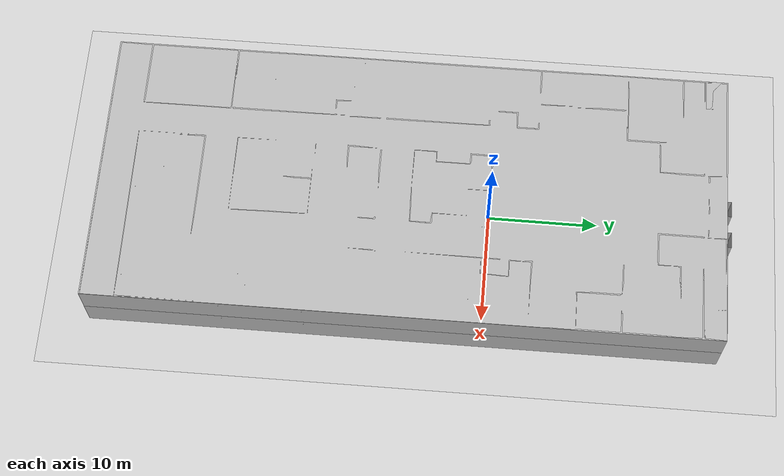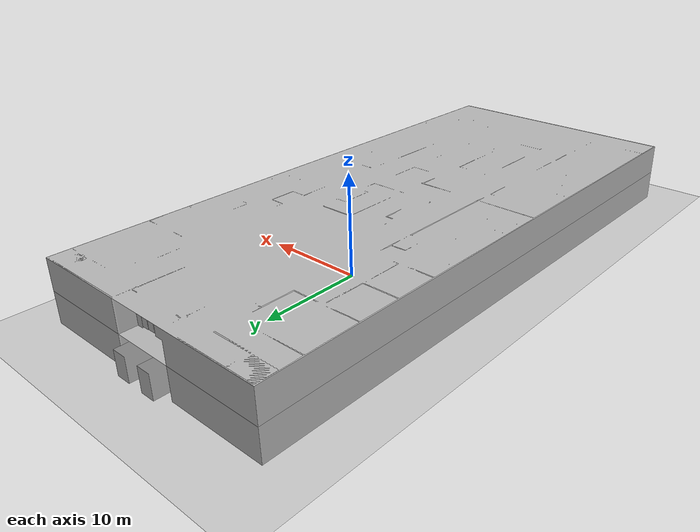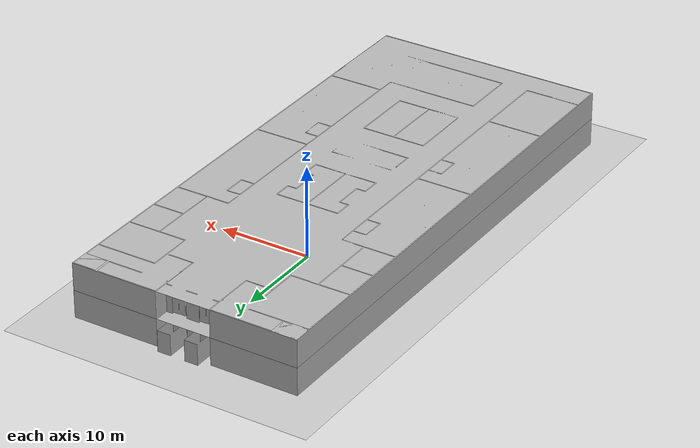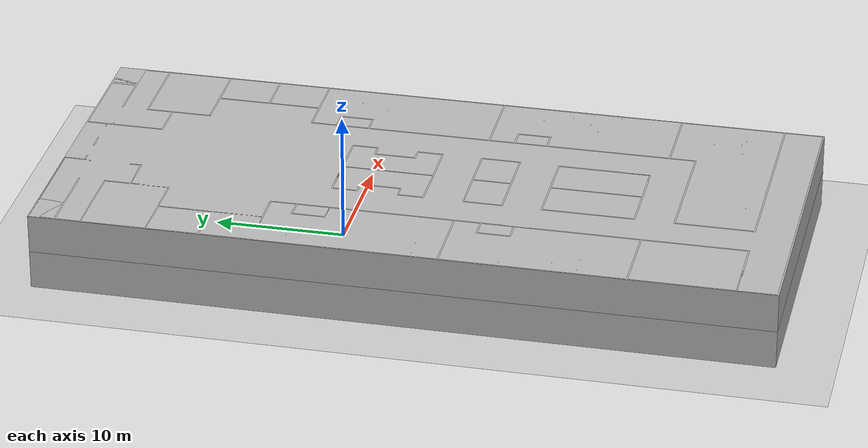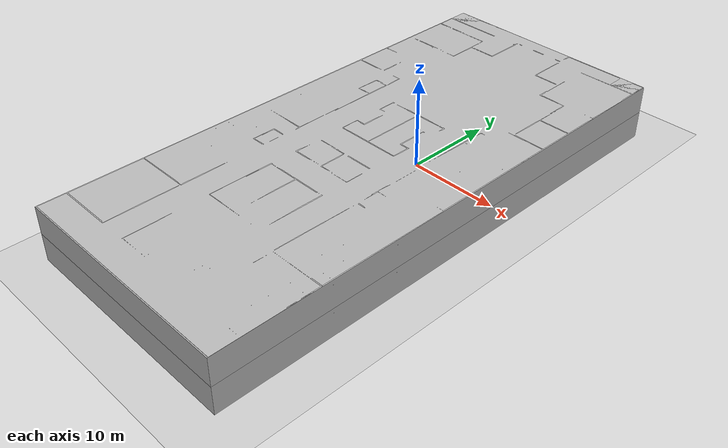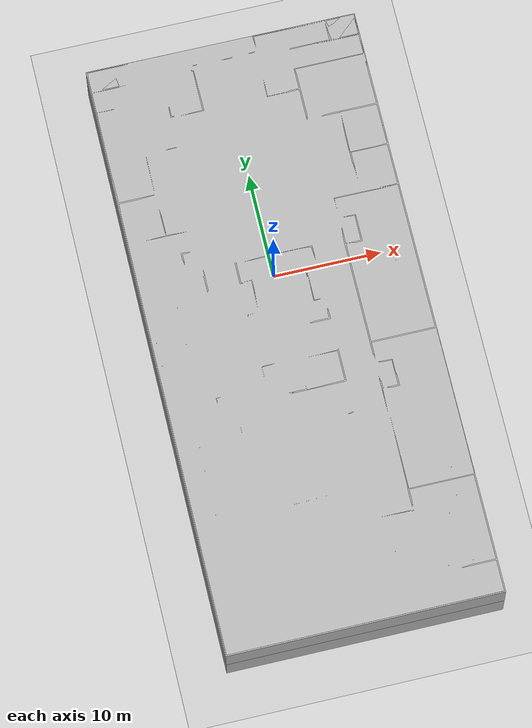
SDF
<sdf version="1.6">
 <world name="world">
  <gravity>0 0 -9.8</gravity>
  <physics default="0" name="default_physics" type="ode">
   <max_step_size>0.001</max_step_size>
   <real_time_factor>1</real_time_factor>
   <real_time_update_rate>1000</real_time_update_rate>
  </physics>
  <scene><ambient>0.6 0.6 0.6 1</ambient><background>0.4 0.4 0.4 1</background><shadows>false</shadows></scene>
  <include><uri>model://sun</uri></include>
  <include><uri>model://ground_plane</uri><pose>0 0 -0.1 0 -0 0</pose></include>
  <model name="aws_robomaker_hospital_floor_01_walls_1">
   <include>
    <uri>model://aws_robomaker_hospital_floor_01_walls</uri>
    <static>true</static>
    <pose>-0.013823 -0.013783 0 0 -0 0</pose>
   </include>
  </model>
  <model name="aws_robomaker_hospital_elevator_01_portal_1">
   <include>
    <uri>model://aws_robomaker_hospital_elevator_01_portal</uri>
    <static>true</static>
    <pose>-1.50654 19.4813 0.19 0 -0 0</pose>
   </include>
  </model>
  <model name="aws_robomaker_hospital_elevator_01_portal_2">
   <include>
    <uri>model://aws_robomaker_hospital_elevator_01_portal</uri>
    <static>true</static>
    <pose>1.51134 19.487 0.19 0 -0 0</pose>
   </include>
  </model>
  <model name="aws_robomaker_hospital_elevator_01_car_1">
   <include>
    <uri>model://aws_robomaker_hospital_elevator_01_car</uri>
    <static>true</static>
    <pose>-1.49587 19.35 0.19 0 -0 0</pose>
   </include>
  </model>
  <model name="aws_robomaker_hospital_elevator_01_car_2">
   <include>
    <uri>model://aws_robomaker_hospital_elevator_01_car</uri>
    <static>true</static>
    <pose>1.5407 19.35 0.19 0 -0 0</pose>
   </include>
  </model>
  <model name="aws_robomaker_hospital_elevator_01_door_1">
   <include>
    <uri>model://aws_robomaker_hospital_elevator_01_door</uri>
    <static>true</static>
    <pose>-1.51 19.35 0.19 0 -0 0</pose>
   </include>
  </model>
  <model name="aws_robomaker_hospital_elevator_01_door_2">
   <include>
    <uri>model://aws_robomaker_hospital_elevator_01_door</uri>
    <static>true</static>
    <pose>1.52843 19.3627 0.19 0 -0 0</pose>
   </include>
  </model>
  <model name="aws_robomaker_hospital_curtain_half_open_01_1">
   <include>
    <uri>model://aws_robomaker_hospital_curtain_half_open_01</uri>
    <static>true</static>
    <pose>-11.0216 -13.8069 0 0 -0 1.55358</pose>
   </include>
  </model>
  <model name="aws_robomaker_hospital_curtain_closed_01_1">
   <include>
    <uri>model://aws_robomaker_hospital_curtain_closed_01</uri>
    <static>true</static>
    <pose>-11.022 -7.27757 0 0 -0 1.57907</pose>
   </include>
  </model>
  <model name="aws_robomaker_hospital_curtain_half_open_01_2">
   <include>
    <uri>model://aws_robomaker_hospital_curtain_half_open_01</uri>
    <static>true</static>
    <pose>11.1417 -21.4039 0 0 0 -1.55117</pose>
   </include>
  </model>
  <model name="aws_robomaker_hospital_curtain_half_open_01_3">
   <include>
    <uri>model://aws_robomaker_hospital_curtain_half_open_01</uri>
    <static>true</static>
    <pose>11.1068 -17.8472 0 0 0 -1.55117</pose>
   </include>
  </model>
  <model name="aws_robomaker_hospital_curtain_half_open_01_4">
   <include>
    <uri>model://aws_robomaker_hospital_curtain_half_open_01</uri>
    <static>true</static>
    <pose>11.1374 -14.1551 0 0 0 -1.55117</pose>
   </include>
  </model>
  <model name="aws_robomaker_hospital_curtain_half_open_01_5">
   <include>
    <uri>model://aws_robomaker_hospital_curtain_half_open_01</uri>
    <static>true</static>
    <pose>-11.0332 -17.61 0 0 -0 1.55358</pose>
   </include>
  </model>
  <model name="aws_robomaker_hospital_curtain_half_open_01_6">
   <include>
    <uri>model://aws_robomaker_hospital_curtain_half_open_01</uri>
    <static>true</static>
    <pose>-11.0086 -21.7566 0 0 -0 1.55358</pose>
   </include>
  </model>
  <model name="aws_robomaker_hospital_curtain_half_open_01_7">
   <include>
    <uri>model://aws_robomaker_hospital_curtain_half_open_01</uri>
    <static>true</static>
    <pose>-11.0426 0.066126 0 0 -0 1.56614</pose>
   </include>
  </model>
  <model name="aws_robomaker_hospital_curtain_half_open_01_8">
   <include>
    <uri>model://aws_robomaker_hospital_curtain_half_open_01</uri>
    <static>true</static>
    <pose>-11.0309 -3.75145 0 0 -0 1.56614</pose>
   </include>
  </model>
  <model name="aws_robomaker_hospital_floor_01_ceiling_1">
   <include>
    <uri>model://aws_robomaker_hospital_floor_01_ceiling</uri>
    <static>true</static>
    <pose>0.016552 0.050728 0 0 -0 0</pose>
   </include>
  </model>
  <model name="aws_robomaker_hospital_ramp_01_1">
   <include>
    <uri>model://aws_robomaker_hospital_ramp_01</uri>
    <static>true</static>
    <pose>-1.70996 16.3685 0 0 -0 0</pose>
   </include>
  </model>
  <model name="aws_robomaker_hospital_curtain_closed_01_2">
   <include>
    <uri>model://aws_robomaker_hospital_curtain_closed_01</uri>
    <static>true</static>
    <pose>11.0303 -3.70124 0 0 0 -1.58306</pose>
   </include>
  </model>
  <model name="aws_robomaker_hospital_curtain_closed_01_3">
   <include>
    <uri>model://aws_robomaker_hospital_curtain_closed_01</uri>
    <static>true</static>
    <pose>10.9586 0.159483 0 0 0 -1.58306</pose>
   </include>
  </model>
  <model name="aws_robomaker_hospital_curtain_closed_01_4">
   <include>
    <uri>model://aws_robomaker_hospital_curtain_closed_01</uri>
    <static>true</static>
    <pose>10.9819 -26.2149 0 0 0 -1.58306</pose>
   </include>
  </model>
  <model name="aws_robomaker_hospital_curtain_closed_01_5">
   <include>
    <uri>model://aws_robomaker_hospital_curtain_closed_01</uri>
    <static>true</static>
    <pose>1.31506 -30.5771 0 0 -0 3.1401</pose>
   </include>
  </model>
  <model name="aws_robomaker_hospital_curtain_closed_01_6">
   <include>
    <uri>model://aws_robomaker_hospital_curtain_closed_01</uri>
    <static>true</static>
    <pose>5.49659 -30.5364 0 0 -0 3.1401</pose>
   </include>
  </model>
  <model name="aws_robomaker_hospital_curtain_closed_01_7">
   <include>
    <uri>model://aws_robomaker_hospital_curtain_closed_01</uri>
    <static>true</static>
    <pose>9.80048 -30.5918 0 0 -0 3.1401</pose>
   </include>
  </model>
  <model name="floor_1_aws_robomaker_hospital_floor_01_walls_1">
   <include>
    <uri>model://aws_robomaker_hospital_floor_01_walls</uri>
    <static>true</static>
    <pose>-0.013823 -0.013783 3.0 0 -0 0</pose>
   </include>
  </model>
  <model name="floor_1_aws_robomaker_hospital_elevator_01_portal_1">
   <include>
    <uri>model://aws_robomaker_hospital_elevator_01_portal</uri>
    <static>true</static>
    <pose>-1.50654 19.4813 3.19 0 -0 0</pose>
   </include>
  </model>
  <model name="floor_1_aws_robomaker_hospital_elevator_01_portal_2">
   <include>
    <uri>model://aws_robomaker_hospital_elevator_01_portal</uri>
    <static>true</static>
    <pose>1.51134 19.487 3.19 0 -0 0</pose>
   </include>
  </model>
  <model name="floor_1_aws_robomaker_hospital_elevator_01_door_1">
   <include>
    <uri>model://aws_robomaker_hospital_elevator_01_door</uri>
    <static>true</static>
    <pose>-1.51 19.35 3.19 0 -0 0</pose>
   </include>
  </model>
  <model name="floor_1_aws_robomaker_hospital_elevator_01_door_2">
   <include>
    <uri>model://aws_robomaker_hospital_elevator_01_door</uri>
    <static>true</static>
    <pose>1.52843 19.3627 3.19 0 -0 0</pose>
   </include>
  </model>
  <model name="floor_1_aws_robomaker_hospital_curtain_half_open_01_1">
   <include>
    <uri>model://aws_robomaker_hospital_curtain_half_open_01</uri>
    <static>true</static>
    <pose>-11.0216 -13.8069 3.0 0 -0 1.55358</pose>
   </include>
  </model>
  <model name="floor_1_aws_robomaker_hospital_curtain_closed_01_1">
   <include>
    <uri>model://aws_robomaker_hospital_curtain_closed_01</uri>
    <static>true</static>
    <pose>-11.022 -7.27757 3.0 0 -0 1.57907</pose>
   </include>
  </model>
  <model name="floor_1_aws_robomaker_hospital_curtain_half_open_01_2">
   <include>
    <uri>model://aws_robomaker_hospital_curtain_half_open_01</uri>
    <static>true</static>
    <pose>11.1417 -21.4039 3.0 0 0 -1.55117</pose>
   </include>
  </model>
  <model name="floor_1_aws_robomaker_hospital_curtain_half_open_01_3">
   <include>
    <uri>model://aws_robomaker_hospital_curtain_half_open_01</uri>
    <static>true</static>
    <pose>11.1068 -17.8472 3.0 0 0 -1.55117</pose>
   </include>
  </model>
  <model name="floor_1_aws_robomaker_hospital_curtain_half_open_01_4">
   <include>
    <uri>model://aws_robomaker_hospital_curtain_half_open_01</uri>
    <static>true</static>
    <pose>11.1374 -14.1551 3.0 0 0 -1.55117</pose>
   </include>
  </model>
  <model name="floor_1_aws_robomaker_hospital_curtain_half_open_01_5">
   <include>
    <uri>model://aws_robomaker_hospital_curtain_half_open_01</uri>
    <static>true</static>
    <pose>-11.0332 -17.61 3.0 0 -0 1.55358</pose>
   </include>
  </model>
  <model name="floor_1_aws_robomaker_hospital_curtain_half_open_01_6">
   <include>
    <uri>model://aws_robomaker_hospital_curtain_half_open_01</uri>
    <static>true</static>
    <pose>-11.0086 -21.7566 3.0 0 -0 1.55358</pose>
   </include>
  </model>
  <model name="floor_1_aws_robomaker_hospital_curtain_half_open_01_7">
   <include>
    <uri>model://aws_robomaker_hospital_curtain_half_open_01</uri>
    <static>true</static>
    <pose>-11.0426 0.066126 3.0 0 -0 1.56614</pose>
   </include>
  </model>
  <model name="floor_1_aws_robomaker_hospital_curtain_half_open_01_8">
   <include>
    <uri>model://aws_robomaker_hospital_curtain_half_open_01</uri>
    <static>true</static>
    <pose>-11.0309 -3.75145 3.0 0 -0 1.56614</pose>
   </include>
  </model>
  <model name="floor_1_aws_robomaker_hospital_floor_01_ceiling_1">
   <include>
    <uri>model://aws_robomaker_hospital_floor_01_ceiling</uri>
    <static>true</static>
    <pose>0.016552 0.050728 3.0 0 -0 0</pose>
   </include>
  </model>
  <model name="floor_1_aws_robomaker_hospital_ramp_01_1">
   <include>
    <uri>model://aws_robomaker_hospital_ramp_01</uri>
    <static>true</static>
    <pose>-1.70996 16.3685 3.0 0 -0 0</pose>
   </include>
  </model>
  <model name="floor_1_aws_robomaker_hospital_curtain_closed_01_2">
   <include>
    <uri>model://aws_robomaker_hospital_curtain_closed_01</uri>
    <static>true</static>
    <pose>11.0303 -3.70124 3.0 0 0 -1.58306</pose>
   </include>
  </model>
  <model name="floor_1_aws_robomaker_hospital_curtain_closed_01_3">
   <include>
    <uri>model://aws_robomaker_hospital_curtain_closed_01</uri>
    <static>true</static>
    <pose>10.9586 0.159483 3.0 0 0 -1.58306</pose>
   </include>
  </model>
  <model name="floor_1_aws_robomaker_hospital_curtain_closed_01_4">
   <include>
    <uri>model://aws_robomaker_hospital_curtain_closed_01</uri>
    <static>true</static>
    <pose>10.9819 -26.2149 3.0 0 0 -1.58306</pose>
   </include>
  </model>
  <model name="floor_1_aws_robomaker_hospital_curtain_closed_01_5">
   <include>
    <uri>model://aws_robomaker_hospital_curtain_closed_01</uri>
    <static>true</static>
    <pose>1.31506 -30.5771 3.0 0 -0 3.1401</pose>
   </include>
  </model>
  <model name="floor_1_aws_robomaker_hospital_curtain_closed_01_6">
   <include>
    <uri>model://aws_robomaker_hospital_curtain_closed_01</uri>
    <static>true</static>
    <pose>5.49659 -30.5364 3.0 0 -0 3.1401</pose>
   </include>
  </model>
  <model name="floor_1_aws_robomaker_hospital_curtain_closed_01_7">
   <include>
    <uri>model://aws_robomaker_hospital_curtain_closed_01</uri>
    <static>true</static>
    <pose>9.80048 -30.5918 3.0 0 -0 3.1401</pose>
   </include>
  </model>
 </world>
</sdf>

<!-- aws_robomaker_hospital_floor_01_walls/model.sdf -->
<sdf version="1.6">
  <model name="aws_robomaker_hospital_floor_01_walls">
    <link name="link">
      <visual name="visual">
	    <geometry>
          <mesh>
            <uri>model://aws_robomaker_hospital_floor_01_walls/meshes/aws_robomaker_hospital_floor_01_walls_visual.dae</uri>
          </mesh>
        </geometry>
      </visual>
      <collision name="collision">
        <geometry>
          <mesh>
            <uri>model://aws_robomaker_hospital_floor_01_walls/meshes/aws_robomaker_hospital_floor_01_walls_collision.dae</uri>
          </mesh>
        </geometry>
      </collision>
</link>
  <static>1</static>
  </model>
</sdf>

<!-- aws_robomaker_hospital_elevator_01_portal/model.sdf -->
<sdf version="1.6">
  <model name="aws_robomaker_hospital_elevator_01_portal">
    <link name="link">
      <visual name="visual">
	    <geometry>
          <mesh>
            <uri>model://aws_robomaker_hospital_elevator_01_portal/meshes/aws_robomaker_hospital_elevator_01_portal_visual.dae</uri>
          </mesh>
        </geometry>
      </visual>
      <collision name="collision">
        <geometry>
          <mesh>
            <uri>model://aws_robomaker_hospital_elevator_01_portal/meshes/aws_robomaker_hospital_elevator_01_portal_collision.dae</uri>
          </mesh>
        </geometry>
      </collision>
</link>
  <static>1</static>
  </model>
</sdf>

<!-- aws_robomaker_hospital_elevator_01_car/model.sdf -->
<sdf version="1.6">
  <model name="aws_robomaker_hospital_elevator_01_car">
    <link name="link">
      <visual name="visual">
	    <geometry>
          <mesh>
            <uri>model://aws_robomaker_hospital_elevator_01_car/meshes/aws_robomaker_hospital_elevator_01_car_visual.dae</uri>
          </mesh>
        </geometry>
      </visual>
      <collision name="collision">
        <geometry>
          <mesh>
            <uri>model://aws_robomaker_hospital_elevator_01_car/meshes/aws_robomaker_hospital_elevator_01_car_collision.dae</uri>
          </mesh>
        </geometry>
      </collision>
</link>
  <static>1</static>
  </model>
</sdf>

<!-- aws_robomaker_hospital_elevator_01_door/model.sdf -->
<sdf version="1.6">
  <model name="aws_robomaker_hospital_elevator_01_door">
    <link name="link">
      <visual name="visual">
	    <geometry>
          <mesh>
            <uri>model://aws_robomaker_hospital_elevator_01_door/meshes/aws_robomaker_hospital_elevator_01_door_visual.dae</uri>
          </mesh>
        </geometry>
      </visual>
      <collision name="collision">
        <geometry>
          <mesh>
            <uri>model://aws_robomaker_hospital_elevator_01_door/meshes/aws_robomaker_hospital_elevator_01_door_collision.dae</uri>
          </mesh>
        </geometry>
      </collision>
</link>
  <static>1</static>
  </model>
</sdf>

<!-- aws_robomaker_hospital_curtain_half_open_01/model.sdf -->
<sdf version="1.6">
  <model name="aws_robomaker_hospital_curtain_half_open_01">
    <link name="link">
      <visual name="visual">
	    <geometry>
          <mesh>
            <uri>model://aws_robomaker_hospital_curtain_half_open_01/meshes/aws_robomaker_hospital_curtain_half_open_01_visual.dae</uri>
          </mesh>
        </geometry>
      </visual>
      <collision name="collision">
        <geometry>
          <mesh>
            <uri>model://aws_robomaker_hospital_curtain_half_open_01/meshes/aws_robomaker_hospital_curtain_half_open_01_collision.dae</uri>
          </mesh>
        </geometry>
      </collision>
</link>
  <static>1</static>
  </model>
</sdf>

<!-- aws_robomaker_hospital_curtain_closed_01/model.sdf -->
<sdf version="1.6">
  <model name="aws_robomaker_hospital_curtain_closed_01">
    <link name="link">
      <visual name="visual">
	    <geometry>
          <mesh>
            <uri>model://aws_robomaker_hospital_curtain_closed_01/meshes/aws_robomaker_hospital_curtain_closed_01_visual.dae</uri>
          </mesh>
        </geometry>
      </visual>
      <collision name="collision">
        <geometry>
          <mesh>
            <uri>model://aws_robomaker_hospital_curtain_closed_01/meshes/aws_robomaker_hospital_curtain_closed_01_collision.dae</uri>
          </mesh>
        </geometry>
      </collision>
</link>
  <static>1</static>
  </model>
</sdf>

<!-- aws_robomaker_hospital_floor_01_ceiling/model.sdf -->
<sdf version="1.6">
  <model name="aws_robomaker_hospital_floor_01_ceiling">
    <link name="link">
      <visual name="visual">
	    <geometry>
          <mesh>
            <uri>model://aws_robomaker_hospital_floor_01_ceiling/meshes/aws_robomaker_hospital_floor_01_ceiling_visual.dae</uri>
          </mesh>
        </geometry>
      </visual>
      <collision name="collision">
        <geometry>
          <mesh>
            <uri>model://aws_robomaker_hospital_floor_01_ceiling/meshes/aws_robomaker_hospital_floor_01_ceiling_collision.dae</uri>
          </mesh>
        </geometry>
      </collision>
</link>
  <static>1</static>
  </model>
</sdf>

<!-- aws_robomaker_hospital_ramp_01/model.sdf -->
<sdf version="1.6">
  <model name="aws_robomaker_hospital_ramp_01">
    <link name="link">
      <visual name="visual">
	    <geometry>
          <mesh>
            <uri>model://aws_robomaker_hospital_ramp_01/meshes/aws_robomaker_hospital_ramp_01_visual.dae</uri>
          </mesh>
        </geometry>
      </visual>
      <collision name="collision">
        <geometry>
          <mesh>
            <uri>model://aws_robomaker_hospital_ramp_01/meshes/aws_robomaker_hospital_ramp_01_collision.dae</uri>
          </mesh>
        </geometry>
      </collision>
</link>
  <static>1</static>
  </model>
</sdf>
